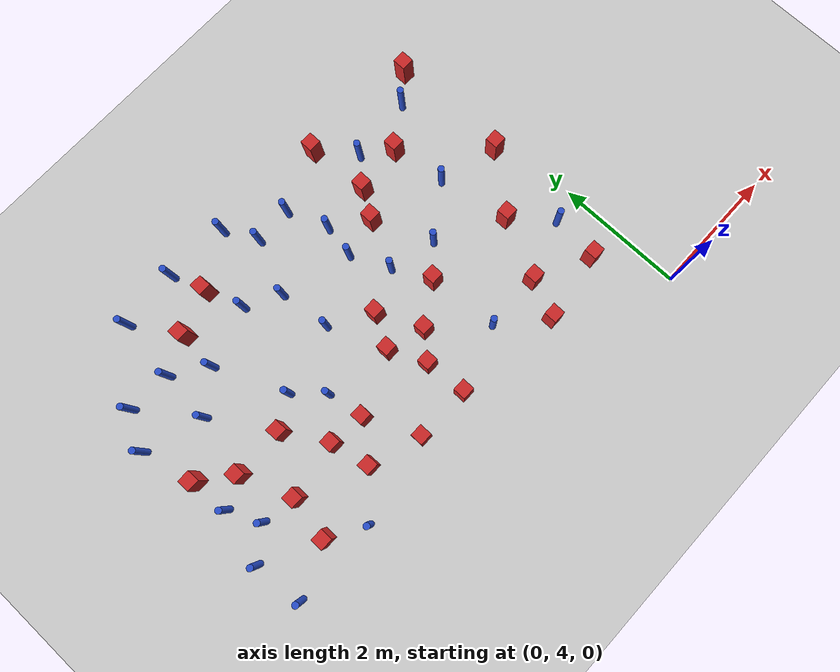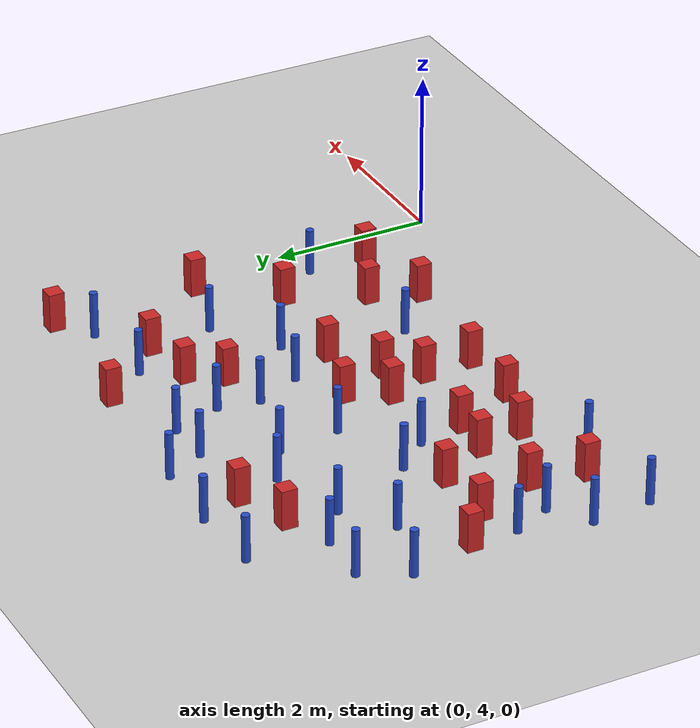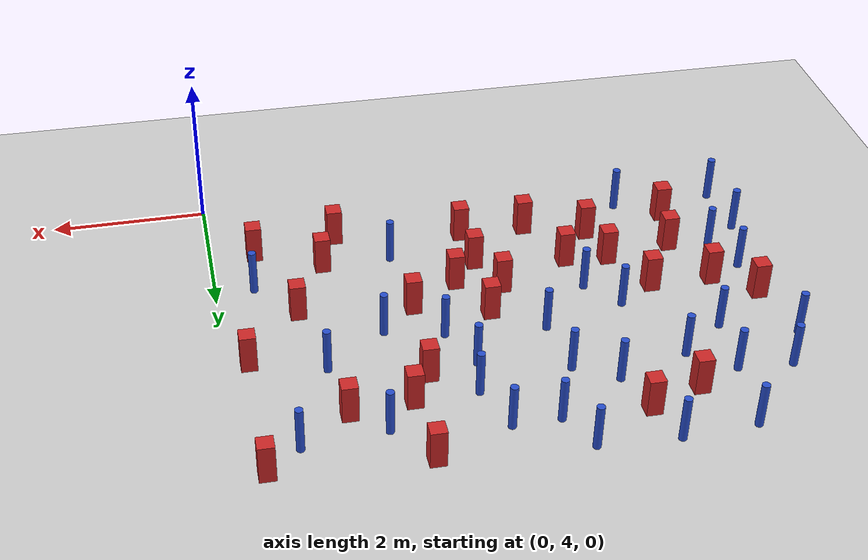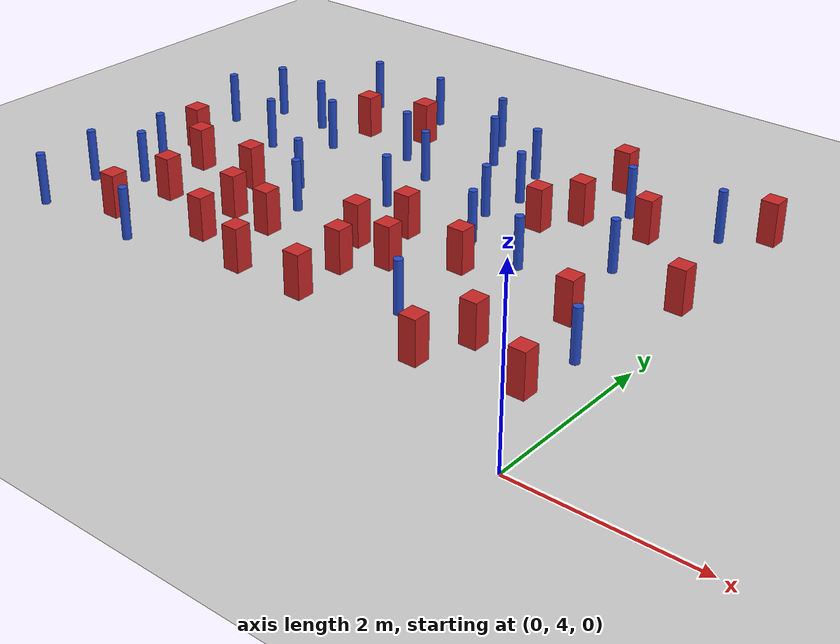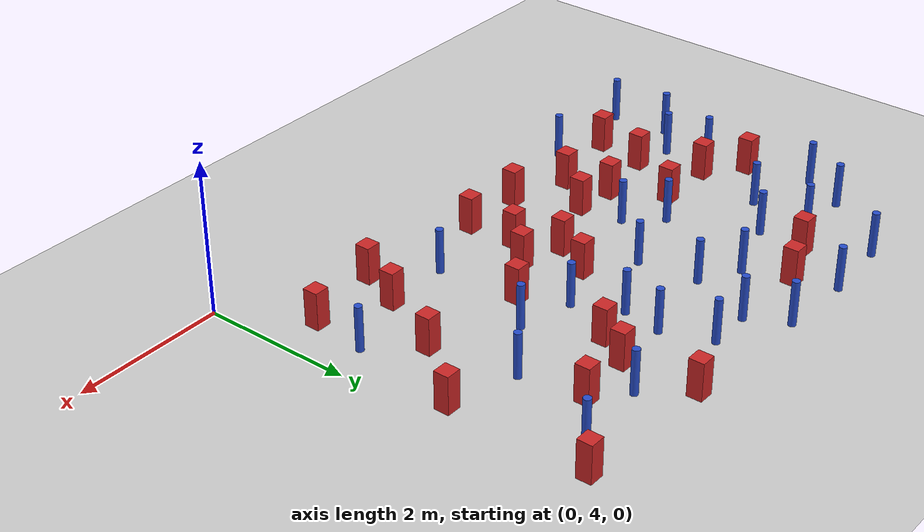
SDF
<sdf version="1.6">
 <world name="default">
  <model name="ground_plane">
   <static>1</static>
   <link name="link">
    <collision name="collision">
     <geometry><plane><normal>0 0 1</normal><size>100 100</size></plane></geometry>
     <surface><friction><ode><mu>100</mu><mu2>50</mu2></ode></friction></surface>
    </collision>
    <visual name="visual">
     <cast_shadows>0</cast_shadows>
     <geometry><plane><normal>0 0 1</normal><size>100 100</size></plane></geometry>
     <material>
      <ambient>1.0 1.0 1.0 1.0</ambient>
      <diffuse>0.8 0.8 0.8 1.0</diffuse>
      <specular>0.01 0.01 0.01 1.000000</specular>
     </material>
    </visual>
   </link>
  </model>
  <model name="square_post_obstacle6">
   <static>true</static>
   <pose>-0.278047388388 9.13855485303 8.22691968438e-08 7.22125133819e-06 -7.54495500217e-07 2.29674213826e-05</pose>
   <link name="link">
    <pose>0 0 0.25 0 -0 0</pose>
    <inertial>
     <mass>100</mass>
     <inertia>
      <ixx>0.166667</ixx>
      <ixy>0</ixy>
      <ixz>0</ixz>
      <iyy>0.166667</iyy>
      <iyz>0</iyz>
      <izz>0.166667</izz>
     </inertia>
    </inertial>
    <collision name="collision"><geometry><box><size>.2 .2 .5</size></box></geometry></collision>
    <visual name="visual">
     <geometry><box><size>.2 .2 .5</size></box></geometry>
     <material>
      <script><name>Gazebo/Red</name><uri>file://media/materials/scripts/gazebo.material</uri></script>
     </material>
    </visual>
   </link>
  </model>
  <model name="square_post_obstacle8">
   <static>true</static>
   <pose>-0.275440074873 7.2741674177 8.22691968438e-08 7.2212513382e-06 -7.54495500217e-07 2.29674213826e-05</pose>
   <link name="link">
    <pose>0 0 0.25 0 -0 0</pose>
    <inertial>
     <mass>100</mass>
     <inertia>
      <ixx>0.166667</ixx>
      <ixy>0</ixy>
      <ixz>0</ixz>
      <iyy>0.166667</iyy>
      <iyz>0</iyz>
      <izz>0.166667</izz>
     </inertia>
    </inertial>
    <collision name="collision"><geometry><box><size>.2 .2 .5</size></box></geometry></collision>
    <visual name="visual">
     <geometry><box><size>.2 .2 .5</size></box></geometry>
     <material>
      <script><name>Gazebo/Red</name><uri>file://media/materials/scripts/gazebo.material</uri></script>
     </material>
    </visual>
   </link>
  </model>
  <model name="square_post_obstacle15">
   <static>true</static>
   <pose>-5.42483959669 8.63668110623 8.22691968438e-08 7.22125133819e-06 -7.54495500217e-07 2.29674213826e-05</pose>
   <link name="link">
    <pose>0 0 0.25 0 -0 0</pose>
    <inertial>
     <mass>100</mass>
     <inertia>
      <ixx>0.166667</ixx>
      <ixy>0</ixy>
      <ixz>0</ixz>
      <iyy>0.166667</iyy>
      <iyz>0</iyz>
      <izz>0.166667</izz>
     </inertia>
    </inertial>
    <collision name="collision"><geometry><box><size>.2 .2 .5</size></box></geometry></collision>
    <visual name="visual">
     <geometry><box><size>.2 .2 .5</size></box></geometry>
     <material>
      <script><name>Gazebo/Red</name><uri>file://media/materials/scripts/gazebo.material</uri></script>
     </material>
    </visual>
   </link>
  </model>
  <model name="pole_obstacle13">
   <static>true</static>
   <pose>-2.69428593522 7.13433227793 2.88873142074e-08 -9.90536689859e-09 4.60219948989e-07 -1.20965994961e-07</pose>
   <link name="link">
    <pose>0 0 0.3 0 -0 0</pose>
    <inertial>
     <mass>1</mass>
     <inertia><ixx>0.145833</ixx><ixy>0</ixy><ixz>0</ixz><iyy>0.145833</iyy><iyz>0</iyz><izz>0.125</izz></inertia>
    </inertial>
    <collision name="collision">
     <geometry><cylinder><radius>0.05</radius><length>.6</length></cylinder></geometry>
    </collision>
    <visual name="visual">
     <geometry><cylinder><radius>0.05</radius><length>.6</length></cylinder></geometry>
     <material>
      <script><name>Gazebo/Blue</name><uri>file://media/materials/scripts/gazebo.material</uri></script>
     </material>
    </visual>
   </link>
  </model>
  <model name="pole_obstacle30">
   <static>true</static>
   <pose>-2.96345489297 7.72469087831 2.88873142074e-08 -9.90536689859e-09 4.60219948989e-07 -1.20965994961e-07</pose>
   <link name="link">
    <pose>0 0 0.3 0 -0 0</pose>
    <inertial>
     <mass>1</mass>
     <inertia><ixx>0.145833</ixx><ixy>0</ixy><ixz>0</ixz><iyy>0.145833</iyy><iyz>0</iyz><izz>0.125</izz></inertia>
    </inertial>
    <collision name="collision">
     <geometry><cylinder><radius>0.05</radius><length>.6</length></cylinder></geometry>
    </collision>
    <visual name="visual">
     <geometry><cylinder><radius>0.05</radius><length>.6</length></cylinder></geometry>
     <material>
      <script><name>Gazebo/Blue</name><uri>file://media/materials/scripts/gazebo.material</uri></script>
     </material>
    </visual>
   </link>
  </model>
  <model name="pole_obstacle35">
   <static>true</static>
   <pose>-5.54558380403 4.84469819112 2.88873142074e-08 -9.90536690842e-09 4.60219948965e-07 -1.20965994976e-07</pose>
   <link name="link">
    <pose>0 0 0.3 0 -0 0</pose>
    <inertial>
     <mass>1</mass>
     <inertia><ixx>0.145833</ixx><ixy>0</ixy><ixz>0</ixz><iyy>0.145833</iyy><iyz>0</iyz><izz>0.125</izz></inertia>
    </inertial>
    <collision name="collision">
     <geometry><cylinder><radius>0.05</radius><length>.6</length></cylinder></geometry>
    </collision>
    <visual name="visual">
     <geometry><cylinder><radius>0.05</radius><length>.6</length></cylinder></geometry>
     <material>
      <script><name>Gazebo/Blue</name><uri>file://media/materials/scripts/gazebo.material</uri></script>
     </material>
    </visual>
   </link>
  </model>
  <model name="square_post_obstacle36">
   <static>true</static>
   <pose>-5.47029633006 6.65134656885 8.22691968438e-08 7.2212513382e-06 -7.54495500217e-07 2.29674213826e-05</pose>
   <link name="link">
    <pose>0 0 0.25 0 -0 0</pose>
    <inertial>
     <mass>100</mass>
     <inertia>
      <ixx>0.166667</ixx>
      <ixy>0</ixy>
      <ixz>0</ixz>
      <iyy>0.166667</iyy>
      <iyz>0</iyz>
      <izz>0.166667</izz>
     </inertia>
    </inertial>
    <collision name="collision"><geometry><box><size>.2 .2 .5</size></box></geometry></collision>
    <visual name="visual">
     <geometry><box><size>.2 .2 .5</size></box></geometry>
     <material>
      <script><name>Gazebo/Red</name><uri>file://media/materials/scripts/gazebo.material</uri></script>
     </material>
    </visual>
   </link>
  </model>
  <model name="square_post_obstacle47">
   <static>true</static>
   <pose>-5.09130973527 5.99680307398 8.22691968438e-08 7.2212513382e-06 -7.54495500217e-07 2.29674213826e-05</pose>
   <link name="link">
    <pose>0 0 0.25 0 -0 0</pose>
    <inertial>
     <mass>100</mass>
     <inertia>
      <ixx>0.166667</ixx>
      <ixy>0</ixy>
      <ixz>0</ixz>
      <iyy>0.166667</iyy>
      <iyz>0</iyz>
      <izz>0.166667</izz>
     </inertia>
    </inertial>
    <collision name="collision"><geometry><box><size>.2 .2 .5</size></box></geometry></collision>
    <visual name="visual">
     <geometry><box><size>.2 .2 .5</size></box></geometry>
     <material>
      <script><name>Gazebo/Red</name><uri>file://media/materials/scripts/gazebo.material</uri></script>
     </material>
    </visual>
   </link>
  </model>
  <model name="square_post_obstacle48">
   <static>true</static>
   <pose>-3.3616059148 5.77959848853 8.22691968438e-08 7.2212513382e-06 -7.54495500217e-07 2.29674213826e-05</pose>
   <link name="link">
    <pose>0 0 0.25 0 -0 0</pose>
    <inertial>
     <mass>100</mass>
     <inertia>
      <ixx>0.166667</ixx>
      <ixy>0</ixy>
      <ixz>0</ixz>
      <iyy>0.166667</iyy>
      <iyz>0</iyz>
      <izz>0.166667</izz>
     </inertia>
    </inertial>
    <collision name="collision"><geometry><box><size>.2 .2 .5</size></box></geometry></collision>
    <visual name="visual">
     <geometry><box><size>.2 .2 .5</size></box></geometry>
     <material>
      <script><name>Gazebo/Red</name><uri>file://media/materials/scripts/gazebo.material</uri></script>
     </material>
    </visual>
   </link>
  </model>
  <model name="pole_obstacle47">
   <static>true</static>
   <pose>-6.67438946008 8.42136175822 2.88873142074e-08 -9.9053668967e-09 4.60219948993e-07 -1.20965994957e-07</pose>
   <link name="link">
    <pose>0 0 0.3 0 -0 0</pose>
    <inertial>
     <mass>1</mass>
     <inertia><ixx>0.145833</ixx><ixy>0</ixy><ixz>0</ixz><iyy>0.145833</iyy><iyz>0</iyz><izz>0.125</izz></inertia>
    </inertial>
    <collision name="collision">
     <geometry><cylinder><radius>0.05</radius><length>.6</length></cylinder></geometry>
    </collision>
    <visual name="visual">
     <geometry><cylinder><radius>0.05</radius><length>.6</length></cylinder></geometry>
     <material>
      <script><name>Gazebo/Blue</name><uri>file://media/materials/scripts/gazebo.material</uri></script>
     </material>
    </visual>
   </link>
  </model>
  <model name="pole_obstacle48">
   <static>true</static>
   <pose>-3.10504759326 8.86883498119 2.88873142074e-08 -9.90536692318e-09 4.6021994893e-07 -1.20965994988e-07</pose>
   <link name="link">
    <pose>0 0 0.3 0 -0 0</pose>
    <inertial>
     <mass>1</mass>
     <inertia><ixx>0.145833</ixx><ixy>0</ixy><ixz>0</ixz><iyy>0.145833</iyy><iyz>0</iyz><izz>0.125</izz></inertia>
    </inertial>
    <collision name="collision">
     <geometry><cylinder><radius>0.05</radius><length>.6</length></cylinder></geometry>
    </collision>
    <visual name="visual">
     <geometry><cylinder><radius>0.05</radius><length>.6</length></cylinder></geometry>
     <material>
      <script><name>Gazebo/Blue</name><uri>file://media/materials/scripts/gazebo.material</uri></script>
     </material>
    </visual>
   </link>
  </model>
  <model name="pole_obstacle56">
   <static>true</static>
   <pose>-1.72775585659 8.69733822991 2.88873142074e-08 -9.90536690474e-09 4.60219948974e-07 -1.2096599497e-07</pose>
   <link name="link">
    <pose>0 0 0.3 0 -0 0</pose>
    <inertial>
     <mass>1</mass>
     <inertia><ixx>0.145833</ixx><ixy>0</ixy><ixz>0</ixz><iyy>0.145833</iyy><iyz>0</iyz><izz>0.125</izz></inertia>
    </inertial>
    <collision name="collision">
     <geometry><cylinder><radius>0.05</radius><length>.6</length></cylinder></geometry>
    </collision>
    <visual name="visual">
     <geometry><cylinder><radius>0.05</radius><length>.6</length></cylinder></geometry>
     <material>
      <script><name>Gazebo/Blue</name><uri>file://media/materials/scripts/gazebo.material</uri></script>
     </material>
    </visual>
   </link>
  </model>
  <model name="square_post_obstacle63">
   <static>true</static>
   <pose>-0.577207001342 5.09539369313 8.22691968438e-08 7.2212513382e-06 -7.54495500217e-07 2.29674213826e-05</pose>
   <link name="link">
    <pose>0 0 0.25 0 -0 0</pose>
    <inertial>
     <mass>100</mass>
     <inertia>
      <ixx>0.166667</ixx>
      <ixy>0</ixy>
      <ixz>0</ixz>
      <iyy>0.166667</iyy>
      <iyz>0</iyz>
      <izz>0.166667</izz>
     </inertia>
    </inertial>
    <collision name="collision"><geometry><box><size>.2 .2 .5</size></box></geometry></collision>
    <visual name="visual">
     <geometry><box><size>.2 .2 .5</size></box></geometry>
     <material>
      <script><name>Gazebo/Red</name><uri>file://media/materials/scripts/gazebo.material</uri></script>
     </material>
    </visual>
   </link>
  </model>
  <model name="square_post_obstacle65">
   <static>true</static>
   <pose>-0.980062814605 6.41514056225 8.22691968438e-08 7.22125133819e-06 -7.54495500217e-07 2.29674213826e-05</pose>
   <link name="link">
    <pose>0 0 0.25 0 -0 0</pose>
    <inertial>
     <mass>100</mass>
     <inertia>
      <ixx>0.166667</ixx>
      <ixy>0</ixy>
      <ixz>0</ixz>
      <iyy>0.166667</iyy>
      <iyz>0</iyz>
      <izz>0.166667</izz>
     </inertia>
    </inertial>
    <collision name="collision"><geometry><box><size>.2 .2 .5</size></box></geometry></collision>
    <visual name="visual">
     <geometry><box><size>.2 .2 .5</size></box></geometry>
     <material>
      <script><name>Gazebo/Red</name><uri>file://media/materials/scripts/gazebo.material</uri></script>
     </material>
    </visual>
   </link>
  </model>
  <model name="pole_obstacle71">
   <static>true</static>
   <pose>-4.94316768794 9.40989537519 2.88873142074e-08 -9.9053668967e-09 4.60219948993e-07 -1.20965994957e-07</pose>
   <link name="link">
    <pose>0 0 0.3 0 -0 0</pose>
    <inertial>
     <mass>1</mass>
     <inertia><ixx>0.145833</ixx><ixy>0</ixy><ixz>0</ixz><iyy>0.145833</iyy><iyz>0</iyz><izz>0.125</izz></inertia>
    </inertial>
    <collision name="collision">
     <geometry><cylinder><radius>0.05</radius><length>.6</length></cylinder></geometry>
    </collision>
    <visual name="visual">
     <geometry><cylinder><radius>0.05</radius><length>.6</length></cylinder></geometry>
     <material>
      <script><name>Gazebo/Blue</name><uri>file://media/materials/scripts/gazebo.material</uri></script>
     </material>
    </visual>
   </link>
  </model>
  <model name="pole_obstacle72">
   <static>true</static>
   <pose>-4.56400019321 8.31030411455 2.88873142074e-08 -9.9053668967e-09 4.60219948993e-07 -1.20965994957e-07</pose>
   <link name="link">
    <pose>0 0 0.3 0 -0 0</pose>
    <inertial>
     <mass>1</mass>
     <inertia><ixx>0.145833</ixx><ixy>0</ixy><ixz>0</ixz><iyy>0.145833</iyy><iyz>0</iyz><izz>0.125</izz></inertia>
    </inertial>
    <collision name="collision">
     <geometry><cylinder><radius>0.05</radius><length>.6</length></cylinder></geometry>
    </collision>
    <visual name="visual">
     <geometry><cylinder><radius>0.05</radius><length>.6</length></cylinder></geometry>
     <material>
      <script><name>Gazebo/Blue</name><uri>file://media/materials/scripts/gazebo.material</uri></script>
     </material>
    </visual>
   </link>
  </model>
  <model name="pole_obstacle75">
   <static>true</static>
   <pose>-6.05443404219 7.57568638594 2.88873142074e-08 -9.90536690842e-09 4.60219948965e-07 -1.20965994976e-07</pose>
   <link name="link">
    <pose>0 0 0.3 0 -0 0</pose>
    <inertial>
     <mass>1</mass>
     <inertia><ixx>0.145833</ixx><ixy>0</ixy><ixz>0</ixz><iyy>0.145833</iyy><iyz>0</iyz><izz>0.125</izz></inertia>
    </inertial>
    <collision name="collision">
     <geometry><cylinder><radius>0.05</radius><length>.6</length></cylinder></geometry>
    </collision>
    <visual name="visual">
     <geometry><cylinder><radius>0.05</radius><length>.6</length></cylinder></geometry>
     <material>
      <script><name>Gazebo/Blue</name><uri>file://media/materials/scripts/gazebo.material</uri></script>
     </material>
    </visual>
   </link>
  </model>
  <model name="square_post_obstacle77">
   <static>true</static>
   <pose>-6.09196059128 5.17222978637 8.22691968438e-08 7.22125133819e-06 -7.54495500217e-07 2.29674213826e-05</pose>
   <link name="link">
    <pose>0 0 0.25 0 -0 0</pose>
    <inertial>
     <mass>100</mass>
     <inertia>
      <ixx>0.166667</ixx>
      <ixy>0</ixy>
      <ixz>0</ixz>
      <iyy>0.166667</iyy>
      <iyz>0</iyz>
      <izz>0.166667</izz>
     </inertia>
    </inertial>
    <collision name="collision"><geometry><box><size>.2 .2 .5</size></box></geometry></collision>
    <visual name="visual">
     <geometry><box><size>.2 .2 .5</size></box></geometry>
     <material>
      <script><name>Gazebo/Red</name><uri>file://media/materials/scripts/gazebo.material</uri></script>
     </material>
    </visual>
   </link>
  </model>
  <model name="square_post_obstacle79">
   <static>true</static>
   <pose>-3.03154806516 6.15822013035 8.22691968438e-08 7.2212513382e-06 -7.54495500217e-07 2.29674213826e-05</pose>
   <link name="link">
    <pose>0 0 0.25 0 -0 0</pose>
    <inertial>
     <mass>100</mass>
     <inertia>
      <ixx>0.166667</ixx>
      <ixy>0</ixy>
      <ixz>0</ixz>
      <iyy>0.166667</iyy>
      <iyz>0</iyz>
      <izz>0.166667</izz>
     </inertia>
    </inertial>
    <collision name="collision"><geometry><box><size>.2 .2 .5</size></box></geometry></collision>
    <visual name="visual">
     <geometry><box><size>.2 .2 .5</size></box></geometry>
     <material>
      <script><name>Gazebo/Red</name><uri>file://media/materials/scripts/gazebo.material</uri></script>
     </material>
    </visual>
   </link>
  </model>
  <model name="pole_obstacle93">
   <static>true</static>
   <pose>-2.31403914855 5.47337985397 2.88873142074e-08 -9.90536689859e-09 4.60219948989e-07 -1.20965994961e-07</pose>
   <link name="link">
    <pose>0 0 0.3 0 -0 0</pose>
    <inertial>
     <mass>1</mass>
     <inertia><ixx>0.145833</ixx><ixy>0</ixy><ixz>0</ixz><iyy>0.145833</iyy><iyz>0</iyz><izz>0.125</izz></inertia>
    </inertial>
    <collision name="collision">
     <geometry><cylinder><radius>0.05</radius><length>.6</length></cylinder></geometry>
    </collision>
    <visual name="visual">
     <geometry><cylinder><radius>0.05</radius><length>.6</length></cylinder></geometry>
     <material>
      <script><name>Gazebo/Blue</name><uri>file://media/materials/scripts/gazebo.material</uri></script>
     </material>
    </visual>
   </link>
  </model>
  <model name="square_post_obstacle84">
   <static>true</static>
   <pose>-6.7601133632 7.03858332938 8.22691968438e-08 7.2212513382e-06 -7.54495500217e-07 2.29674213826e-05</pose>
   <link name="link">
    <pose>0 0 0.25 0 -0 0</pose>
    <inertial>
     <mass>100</mass>
     <inertia>
      <ixx>0.166667</ixx>
      <ixy>0</ixy>
      <ixz>0</ixz>
      <iyy>0.166667</iyy>
      <iyz>0</iyz>
      <izz>0.166667</izz>
     </inertia>
    </inertial>
    <collision name="collision"><geometry><box><size>.2 .2 .5</size></box></geometry></collision>
    <visual name="visual">
     <geometry><box><size>.2 .2 .5</size></box></geometry>
     <material>
      <script><name>Gazebo/Red</name><uri>file://media/materials/scripts/gazebo.material</uri></script>
     </material>
    </visual>
   </link>
  </model>
  <model name="square_post_obstacle91">
   <static>true</static>
   <pose>-4.96617258377 5.39990755819 8.22691968438e-08 7.2212513382e-06 -7.54495500217e-07 2.29674213826e-05</pose>
   <link name="link">
    <pose>0 0 0.25 0 -0 0</pose>
    <inertial>
     <mass>100</mass>
     <inertia>
      <ixx>0.166667</ixx>
      <ixy>0</ixy>
      <ixz>0</ixz>
      <iyy>0.166667</iyy>
      <iyz>0</iyz>
      <izz>0.166667</izz>
     </inertia>
    </inertial>
    <collision name="collision"><geometry><box><size>.2 .2 .5</size></box></geometry></collision>
    <visual name="visual">
     <geometry><box><size>.2 .2 .5</size></box></geometry>
     <material>
      <script><name>Gazebo/Red</name><uri>file://media/materials/scripts/gazebo.material</uri></script>
     </material>
    </visual>
   </link>
  </model>
  <model name="square_post_obstacle98">
   <static>true</static>
   <pose>-3.60601128203 6.33674085012 8.22691968438e-08 7.2212513382e-06 -7.54495500217e-07 2.29674213826e-05</pose>
   <link name="link">
    <pose>0 0 0.25 0 -0 0</pose>
    <inertial>
     <mass>100</mass>
     <inertia>
      <ixx>0.166667</ixx>
      <ixy>0</ixy>
      <ixz>0</ixz>
      <iyy>0.166667</iyy>
      <iyz>0</iyz>
      <izz>0.166667</izz>
     </inertia>
    </inertial>
    <collision name="collision"><geometry><box><size>.2 .2 .5</size></box></geometry></collision>
    <visual name="visual">
     <geometry><box><size>.2 .2 .5</size></box></geometry>
     <material>
      <script><name>Gazebo/Red</name><uri>file://media/materials/scripts/gazebo.material</uri></script>
     </material>
    </visual>
   </link>
  </model>
  <model name="pole_obstacle110">
   <static>true</static>
   <pose>-4.04774074486 8.01870754335 2.88873142074e-08 -9.90536690172e-09 4.60219948981e-07 -1.20965994965e-07</pose>
   <link name="link">
    <pose>0 0 0.3 0 -0 0</pose>
    <inertial>
     <mass>1</mass>
     <inertia><ixx>0.145833</ixx><ixy>0</ixy><ixz>0</ixz><iyy>0.145833</iyy><iyz>0</iyz><izz>0.125</izz></inertia>
    </inertial>
    <collision name="collision">
     <geometry><cylinder><radius>0.05</radius><length>.6</length></cylinder></geometry>
    </collision>
    <visual name="visual">
     <geometry><cylinder><radius>0.05</radius><length>.6</length></cylinder></geometry>
     <material>
      <script><name>Gazebo/Blue</name><uri>file://media/materials/scripts/gazebo.material</uri></script>
     </material>
    </visual>
   </link>
  </model>
  <model name="square_post_obstacle102">
   <static>true</static>
   <pose>-2.40691678039 6.56311837822 8.22691968438e-08 7.2212513382e-06 -7.54495500217e-07 2.29674213826e-05</pose>
   <link name="link">
    <pose>0 0 0.25 0 -0 0</pose>
    <inertial>
     <mass>100</mass>
     <inertia>
      <ixx>0.166667</ixx>
      <ixy>0</ixy>
      <ixz>0</ixz>
      <iyy>0.166667</iyy>
      <iyz>0</iyz>
      <izz>0.166667</izz>
     </inertia>
    </inertial>
    <collision name="collision"><geometry><box><size>.2 .2 .5</size></box></geometry></collision>
    <visual name="visual">
     <geometry><box><size>.2 .2 .5</size></box></geometry>
     <material>
      <script><name>Gazebo/Red</name><uri>file://media/materials/scripts/gazebo.material</uri></script>
     </material>
    </visual>
   </link>
  </model>
  <model name="pole_obstacle116">
   <static>true</static>
   <pose>-6.96563998694 5.60405355709 2.88873142074e-08 -9.90536690842e-09 4.60219948965e-07 -1.20965994976e-07</pose>
   <link name="link">
    <pose>0 0 0.3 0 -0 0</pose>
    <inertial>
     <mass>1</mass>
     <inertia><ixx>0.145833</ixx><ixy>0</ixy><ixz>0</ixz><iyy>0.145833</iyy><iyz>0</iyz><izz>0.125</izz></inertia>
    </inertial>
    <collision name="collision">
     <geometry><cylinder><radius>0.05</radius><length>.6</length></cylinder></geometry>
    </collision>
    <visual name="visual">
     <geometry><cylinder><radius>0.05</radius><length>.6</length></cylinder></geometry>
     <material>
      <script><name>Gazebo/Blue</name><uri>file://media/materials/scripts/gazebo.material</uri></script>
     </material>
    </visual>
   </link>
  </model>
  <model name="pole_obstacle126">
   <static>true</static>
   <pose>-6.9697141789 7.86430248231 2.88873142074e-08 -9.90536690842e-09 4.60219948965e-07 -1.20965994976e-07</pose>
   <link name="link">
    <pose>0 0 0.3 0 -0 0</pose>
    <inertial>
     <mass>1</mass>
     <inertia><ixx>0.145833</ixx><ixy>0</ixy><ixz>0</ixz><iyy>0.145833</iyy><iyz>0</iyz><izz>0.125</izz></inertia>
    </inertial>
    <collision name="collision">
     <geometry><cylinder><radius>0.05</radius><length>.6</length></cylinder></geometry>
    </collision>
    <visual name="visual">
     <geometry><cylinder><radius>0.05</radius><length>.6</length></cylinder></geometry>
     <material>
      <script><name>Gazebo/Blue</name><uri>file://media/materials/scripts/gazebo.material</uri></script>
     </material>
    </visual>
   </link>
  </model>
  <model name="square_post_obstacle124">
   <static>true</static>
   <pose>-1.41863509675 5.49697087451 8.22691968438e-08 7.2212513382e-06 -7.54495500217e-07 2.29674213826e-05</pose>
   <link name="link">
    <pose>0 0 0.25 0 -0 0</pose>
    <inertial>
     <mass>100</mass>
     <inertia>
      <ixx>0.166667</ixx>
      <ixy>0</ixy>
      <ixz>0</ixz>
      <iyy>0.166667</iyy>
      <iyz>0</iyz>
      <izz>0.166667</izz>
     </inertia>
    </inertial>
    <collision name="collision"><geometry><box><size>.2 .2 .5</size></box></geometry></collision>
    <visual name="visual">
     <geometry><box><size>.2 .2 .5</size></box></geometry>
     <material>
      <script><name>Gazebo/Red</name><uri>file://media/materials/scripts/gazebo.material</uri></script>
     </material>
    </visual>
   </link>
  </model>
  <model name="pole_obstacle140">
   <static>true</static>
   <pose>-6.50195101073 5.94503177024 2.88873142074e-08 -9.90536690842e-09 4.60219948965e-07 -1.20965994976e-07</pose>
   <link name="link">
    <pose>0 0 0.3 0 -0 0</pose>
    <inertial>
     <mass>1</mass>
     <inertia><ixx>0.145833</ixx><ixy>0</ixy><ixz>0</ixz><iyy>0.145833</iyy><iyz>0</iyz><izz>0.125</izz></inertia>
    </inertial>
    <collision name="collision">
     <geometry><cylinder><radius>0.05</radius><length>.6</length></cylinder></geometry>
    </collision>
    <visual name="visual">
     <geometry><cylinder><radius>0.05</radius><length>.6</length></cylinder></geometry>
     <material>
      <script><name>Gazebo/Blue</name><uri>file://media/materials/scripts/gazebo.material</uri></script>
     </material>
    </visual>
   </link>
  </model>
  <model name="pole_obstacle142">
   <static>true</static>
   <pose>-1.96877184745 6.958703363 2.88873142074e-08 -9.90536689721e-09 4.60219948992e-07 -1.20965994958e-07</pose>
   <link name="link">
    <pose>0 0 0.3 0 -0 0</pose>
    <inertial>
     <mass>1</mass>
     <inertia><ixx>0.145833</ixx><ixy>0</ixy><ixz>0</ixz><iyy>0.145833</iyy><iyz>0</iyz><izz>0.125</izz></inertia>
    </inertial>
    <collision name="collision">
     <geometry><cylinder><radius>0.05</radius><length>.6</length></cylinder></geometry>
    </collision>
    <visual name="visual">
     <geometry><cylinder><radius>0.05</radius><length>.6</length></cylinder></geometry>
     <material>
      <script><name>Gazebo/Blue</name><uri>file://media/materials/scripts/gazebo.material</uri></script>
     </material>
    </visual>
   </link>
  </model>
  <model name="square_post_obstacle133">
   <static>true</static>
   <pose>-5.96771514176 5.84758943629 8.22691968438e-08 7.2212513382e-06 -7.54495500217e-07 2.29674213826e-05</pose>
   <link name="link">
    <pose>0 0 0.25 0 -0 0</pose>
    <inertial>
     <mass>100</mass>
     <inertia>
      <ixx>0.166667</ixx>
      <ixy>0</ixy>
      <ixz>0</ixz>
      <iyy>0.166667</iyy>
      <iyz>0</iyz>
      <izz>0.166667</izz>
     </inertia>
    </inertial>
    <collision name="collision"><geometry><box><size>.2 .2 .5</size></box></geometry></collision>
    <visual name="visual">
     <geometry><box><size>.2 .2 .5</size></box></geometry>
     <material>
      <script><name>Gazebo/Red</name><uri>file://media/materials/scripts/gazebo.material</uri></script>
     </material>
    </visual>
   </link>
  </model>
  <model name="square_post_obstacle135">
   <static>true</static>
   <pose>-1.65903214879 4.90993914299 8.22691968438e-08 7.2212513382e-06 -7.54495500217e-07 2.29674213826e-05</pose>
   <link name="link">
    <pose>0 0 0.25 0 -0 0</pose>
    <inertial>
     <mass>100</mass>
     <inertia>
      <ixx>0.166667</ixx>
      <ixy>0</ixy>
      <ixz>0</ixz>
      <iyy>0.166667</iyy>
      <iyz>0</iyz>
      <izz>0.166667</izz>
     </inertia>
    </inertial>
    <collision name="collision"><geometry><box><size>.2 .2 .5</size></box></geometry></collision>
    <visual name="visual">
     <geometry><box><size>.2 .2 .5</size></box></geometry>
     <material>
      <script><name>Gazebo/Red</name><uri>file://media/materials/scripts/gazebo.material</uri></script>
     </material>
    </visual>
   </link>
  </model>
  <model name="pole_obstacle145">
   <static>true</static>
   <pose>-0.497229906374 5.82012986283 2.88873142074e-08 -9.90536689758e-09 4.60219948991e-07 -1.20965994957e-07</pose>
   <link name="link">
    <pose>0 0 0.3 0 -0 0</pose>
    <inertial>
     <mass>1</mass>
     <inertia><ixx>0.145833</ixx><ixy>0</ixy><ixz>0</ixz><iyy>0.145833</iyy><iyz>0</iyz><izz>0.125</izz></inertia>
    </inertial>
    <collision name="collision">
     <geometry><cylinder><radius>0.05</radius><length>.6</length></cylinder></geometry>
    </collision>
    <visual name="visual">
     <geometry><cylinder><radius>0.05</radius><length>.6</length></cylinder></geometry>
     <material>
      <script><name>Gazebo/Blue</name><uri>file://media/materials/scripts/gazebo.material</uri></script>
     </material>
    </visual>
   </link>
  </model>
  <model name="square_post_obstacle136">
   <static>true</static>
   <pose>-1.31520337008 8.35799267714 8.22691968438e-08 7.22125133819e-06 -7.54495500217e-07 2.29674213826e-05</pose>
   <link name="link">
    <pose>0 0 0.25 0 -0 0</pose>
    <inertial>
     <mass>100</mass>
     <inertia>
      <ixx>0.166667</ixx>
      <ixy>0</ixy>
      <ixz>0</ixz>
      <iyy>0.166667</iyy>
      <iyz>0</iyz>
      <izz>0.166667</izz>
     </inertia>
    </inertial>
    <collision name="collision"><geometry><box><size>.2 .2 .5</size></box></geometry></collision>
    <visual name="visual">
     <geometry><box><size>.2 .2 .5</size></box></geometry>
     <material>
      <script><name>Gazebo/Red</name><uri>file://media/materials/scripts/gazebo.material</uri></script>
     </material>
    </visual>
   </link>
  </model>
  <model name="pole_obstacle152">
   <static>true</static>
   <pose>-0.692171163268 8.80141340066 2.88873142074e-08 -9.90536690779e-09 4.60219948967e-07 -1.20965994975e-07</pose>
   <link name="link">
    <pose>0 0 0.3 0 -0 0</pose>
    <inertial>
     <mass>1</mass>
     <inertia><ixx>0.145833</ixx><ixy>0</ixy><ixz>0</ixz><iyy>0.145833</iyy><iyz>0</iyz><izz>0.125</izz></inertia>
    </inertial>
    <collision name="collision">
     <geometry><cylinder><radius>0.05</radius><length>.6</length></cylinder></geometry>
    </collision>
    <visual name="visual">
     <geometry><cylinder><radius>0.05</radius><length>.6</length></cylinder></geometry>
     <material>
      <script><name>Gazebo/Blue</name><uri>file://media/materials/scripts/gazebo.material</uri></script>
     </material>
    </visual>
   </link>
  </model>
  <model name="square_post_obstacle147">
   <static>true</static>
   <pose>-4.17597755104 5.13874546375 8.22691968438e-08 7.22125133819e-06 -7.54495500217e-07 2.29674213826e-05</pose>
   <link name="link">
    <pose>0 0 0.25 0 -0 0</pose>
    <inertial>
     <mass>100</mass>
     <inertia>
      <ixx>0.166667</ixx>
      <ixy>0</ixy>
      <ixz>0</ixz>
      <iyy>0.166667</iyy>
      <iyz>0</iyz>
      <izz>0.166667</izz>
     </inertia>
    </inertial>
    <collision name="collision"><geometry><box><size>.2 .2 .5</size></box></geometry></collision>
    <visual name="visual">
     <geometry><box><size>.2 .2 .5</size></box></geometry>
     <material>
      <script><name>Gazebo/Red</name><uri>file://media/materials/scripts/gazebo.material</uri></script>
     </material>
    </visual>
   </link>
  </model>
  <model name="pole_obstacle159">
   <static>true</static>
   <pose>-5.47319302222 8.01664935447 2.88873142074e-08 -9.90536690354e-09 4.60219948977e-07 -1.20965994967e-07</pose>
   <link name="link">
    <pose>0 0 0.3 0 -0 0</pose>
    <inertial>
     <mass>1</mass>
     <inertia><ixx>0.145833</ixx><ixy>0</ixy><ixz>0</ixz><iyy>0.145833</iyy><iyz>0</iyz><izz>0.125</izz></inertia>
    </inertial>
    <collision name="collision">
     <geometry><cylinder><radius>0.05</radius><length>.6</length></cylinder></geometry>
    </collision>
    <visual name="visual">
     <geometry><cylinder><radius>0.05</radius><length>.6</length></cylinder></geometry>
     <material>
      <script><name>Gazebo/Blue</name><uri>file://media/materials/scripts/gazebo.material</uri></script>
     </material>
    </visual>
   </link>
  </model>
  <model name="pole_obstacle160">
   <static>true</static>
   <pose>-1.18993479982 7.51947496324 2.88873142074e-08 -9.90536689852e-09 4.60219948989e-07 -1.2096599496e-07</pose>
   <link name="link">
    <pose>0 0 0.3 0 -0 0</pose>
    <inertial>
     <mass>1</mass>
     <inertia><ixx>0.145833</ixx><ixy>0</ixy><ixz>0</ixz><iyy>0.145833</iyy><iyz>0</iyz><izz>0.125</izz></inertia>
    </inertial>
    <collision name="collision">
     <geometry><cylinder><radius>0.05</radius><length>.6</length></cylinder></geometry>
    </collision>
    <visual name="visual">
     <geometry><cylinder><radius>0.05</radius><length>.6</length></cylinder></geometry>
     <material>
      <script><name>Gazebo/Blue</name><uri>file://media/materials/scripts/gazebo.material</uri></script>
     </material>
    </visual>
   </link>
  </model>
  <model name="square_post_obstacle158">
   <static>true</static>
   <pose>-3.33529638052 6.83062075226 8.22691968438e-08 7.2212513382e-06 -7.54495500217e-07 2.29674213826e-05</pose>
   <link name="link">
    <pose>0 0 0.25 0 -0 0</pose>
    <inertial>
     <mass>100</mass>
     <inertia>
      <ixx>0.166667</ixx>
      <ixy>0</ixy>
      <ixz>0</ixz>
      <iyy>0.166667</iyy>
      <iyz>0</iyz>
      <izz>0.166667</izz>
     </inertia>
    </inertial>
    <collision name="collision"><geometry><box><size>.2 .2 .5</size></box></geometry></collision>
    <visual name="visual">
     <geometry><box><size>.2 .2 .5</size></box></geometry>
     <material>
      <script><name>Gazebo/Red</name><uri>file://media/materials/scripts/gazebo.material</uri></script>
     </material>
    </visual>
   </link>
  </model>
  <model name="square_post_obstacle160">
   <static>true</static>
   <pose>-3.31722376758 5.13027248877 8.22691968438e-08 7.2212513382e-06 -7.54495500217e-07 2.29674213826e-05</pose>
   <link name="link">
    <pose>0 0 0.25 0 -0 0</pose>
    <inertial>
     <mass>100</mass>
     <inertia>
      <ixx>0.166667</ixx>
      <ixy>0</ixy>
      <ixz>0</ixz>
      <iyy>0.166667</iyy>
      <iyz>0</iyz>
      <izz>0.166667</izz>
     </inertia>
    </inertial>
    <collision name="collision"><geometry><box><size>.2 .2 .5</size></box></geometry></collision>
    <visual name="visual">
     <geometry><box><size>.2 .2 .5</size></box></geometry>
     <material>
      <script><name>Gazebo/Red</name><uri>file://media/materials/scripts/gazebo.material</uri></script>
     </material>
    </visual>
   </link>
  </model>
  <model name="pole_obstacle169">
   <static>true</static>
   <pose>-3.95204750099 7.22836246086 2.88873142074e-08 -9.90536690054e-09 4.60219948984e-07 -1.20965994964e-07</pose>
   <link name="link">
    <pose>0 0 0.3 0 -0 0</pose>
    <inertial>
     <mass>1</mass>
     <inertia><ixx>0.145833</ixx><ixy>0</ixy><ixz>0</ixz><iyy>0.145833</iyy><iyz>0</iyz><izz>0.125</izz></inertia>
    </inertial>
    <collision name="collision">
     <geometry><cylinder><radius>0.05</radius><length>.6</length></cylinder></geometry>
    </collision>
    <visual name="visual">
     <geometry><cylinder><radius>0.05</radius><length>.6</length></cylinder></geometry>
     <material>
      <script><name>Gazebo/Blue</name><uri>file://media/materials/scripts/gazebo.material</uri></script>
     </material>
    </visual>
   </link>
  </model>
  <model name="square_post_obstacle172">
   <static>true</static>
   <pose>-4.75753501517 8.88654655516 8.22691968438e-08 7.22125133819e-06 -7.54495500217e-07 2.29674213826e-05</pose>
   <link name="link">
    <pose>0 0 0.25 0 -0 0</pose>
    <inertial>
     <mass>100</mass>
     <inertia>
      <ixx>0.166667</ixx>
      <ixy>0</ixy>
      <ixz>0</ixz>
      <iyy>0.166667</iyy>
      <iyz>0</iyz>
      <izz>0.166667</izz>
     </inertia>
    </inertial>
    <collision name="collision"><geometry><box><size>.2 .2 .5</size></box></geometry></collision>
    <visual name="visual">
     <geometry><box><size>.2 .2 .5</size></box></geometry>
     <material>
      <script><name>Gazebo/Red</name><uri>file://media/materials/scripts/gazebo.material</uri></script>
     </material>
    </visual>
   </link>
  </model>
  <model name="pole_obstacle186">
   <static>true</static>
   <pose>-2.87294439288 8.24033920715 2.88873142074e-08 -9.90536692318e-09 4.6021994893e-07 -1.20965994988e-07</pose>
   <link name="link">
    <pose>0 0 0.3 0 -0 0</pose>
    <inertial>
     <mass>1</mass>
     <inertia><ixx>0.145833</ixx><ixy>0</ixy><ixz>0</ixz><iyy>0.145833</iyy><iyz>0</iyz><izz>0.125</izz></inertia>
    </inertial>
    <collision name="collision">
     <geometry><cylinder><radius>0.05</radius><length>.6</length></cylinder></geometry>
    </collision>
    <visual name="visual">
     <geometry><cylinder><radius>0.05</radius><length>.6</length></cylinder></geometry>
     <material>
      <script><name>Gazebo/Blue</name><uri>file://media/materials/scripts/gazebo.material</uri></script>
     </material>
    </visual>
   </link>
  </model>
  <model name="square_post_obstacle185">
   <static>true</static>
   <pose>-2.0866942367 8.27786213992 8.22691968438e-08 7.22125133819e-06 -7.54495500217e-07 2.29674213826e-05</pose>
   <link name="link">
    <pose>0 0 0.25 0 -0 0</pose>
    <inertial>
     <mass>100</mass>
     <inertia>
      <ixx>0.166667</ixx>
      <ixy>0</ixy>
      <ixz>0</ixz>
      <iyy>0.166667</iyy>
      <iyz>0</iyz>
      <izz>0.166667</izz>
     </inertia>
    </inertial>
    <collision name="collision"><geometry><box><size>.2 .2 .5</size></box></geometry></collision>
    <visual name="visual">
     <geometry><box><size>.2 .2 .5</size></box></geometry>
     <material>
      <script><name>Gazebo/Red</name><uri>file://media/materials/scripts/gazebo.material</uri></script>
     </material>
    </visual>
   </link>
  </model>
  <model name="pole_obstacle194">
   <static>true</static>
   <pose>-3.95619703657 9.35830452467 2.88873142074e-08 -9.90536690427e-09 4.60219948975e-07 -1.2096599497e-07</pose>
   <link name="link">
    <pose>0 0 0.3 0 -0 0</pose>
    <inertial>
     <mass>1</mass>
     <inertia><ixx>0.145833</ixx><ixy>0</ixy><ixz>0</ixz><iyy>0.145833</iyy><iyz>0</iyz><izz>0.125</izz></inertia>
    </inertial>
    <collision name="collision">
     <geometry><cylinder><radius>0.05</radius><length>.6</length></cylinder></geometry>
    </collision>
    <visual name="visual">
     <geometry><cylinder><radius>0.05</radius><length>.6</length></cylinder></geometry>
     <material>
      <script><name>Gazebo/Blue</name><uri>file://media/materials/scripts/gazebo.material</uri></script>
     </material>
    </visual>
   </link>
  </model>
  <model name="pole_obstacle199">
   <static>true</static>
   <pose>-6.89447526843 4.83665307926 2.88873142074e-08 -9.90536690842e-09 4.60219948965e-07 -1.20965994976e-07</pose>
   <link name="link">
    <pose>0 0 0.3 0 -0 0</pose>
    <inertial>
     <mass>1</mass>
     <inertia><ixx>0.145833</ixx><ixy>0</ixy><ixz>0</ixz><iyy>0.145833</iyy><iyz>0</iyz><izz>0.125</izz></inertia>
    </inertial>
    <collision name="collision">
     <geometry><cylinder><radius>0.05</radius><length>.6</length></cylinder></geometry>
    </collision>
    <visual name="visual">
     <geometry><cylinder><radius>0.05</radius><length>.6</length></cylinder></geometry>
     <material>
      <script><name>Gazebo/Blue</name><uri>file://media/materials/scripts/gazebo.material</uri></script>
     </material>
    </visual>
   </link>
  </model>
  <model name="square_post_obstacle191">
   <static>true</static>
   <pose>-2.15048817069 9.25310784615 8.22691968438e-08 7.22125133819e-06 -7.54495500217e-07 2.29674213826e-05</pose>
   <link name="link">
    <pose>0 0 0.25 0 -0 0</pose>
    <inertial>
     <mass>100</mass>
     <inertia>
      <ixx>0.166667</ixx>
      <ixy>0</ixy>
      <ixz>0</ixz>
      <iyy>0.166667</iyy>
      <iyz>0</iyz>
      <izz>0.166667</izz>
     </inertia>
    </inertial>
    <collision name="collision"><geometry><box><size>.2 .2 .5</size></box></geometry></collision>
    <visual name="visual">
     <geometry><box><size>.2 .2 .5</size></box></geometry>
     <material>
      <script><name>Gazebo/Red</name><uri>file://media/materials/scripts/gazebo.material</uri></script>
     </material>
    </visual>
   </link>
  </model>
  <model name="square_post_obstacle194">
   <static>true</static>
   <pose>-6.27337679724 6.64807611579 8.22691968438e-08 7.22125133819e-06 -7.54495500217e-07 2.29674213826e-05</pose>
   <link name="link">
    <pose>0 0 0.25 0 -0 0</pose>
    <inertial>
     <mass>100</mass>
     <inertia>
      <ixx>0.166667</ixx>
      <ixy>0</ixy>
      <ixz>0</ixz>
      <iyy>0.166667</iyy>
      <iyz>0</iyz>
      <izz>0.166667</izz>
     </inertia>
    </inertial>
    <collision name="collision"><geometry><box><size>.2 .2 .5</size></box></geometry></collision>
    <visual name="visual">
     <geometry><box><size>.2 .2 .5</size></box></geometry>
     <material>
      <script><name>Gazebo/Red</name><uri>file://media/materials/scripts/gazebo.material</uri></script>
     </material>
    </visual>
   </link>
  </model>
  <model name="square_post_obstacle195">
   <static>true</static>
   <pose>-4.53652928087 5.93891633637 8.22691968438e-08 7.2212513382e-06 -7.54495500217e-07 2.29674213826e-05</pose>
   <link name="link">
    <pose>0 0 0.25 0 -0 0</pose>
    <inertial>
     <mass>100</mass>
     <inertia>
      <ixx>0.166667</ixx>
      <ixy>0</ixy>
      <ixz>0</ixz>
      <iyy>0.166667</iyy>
      <iyz>0</iyz>
      <izz>0.166667</izz>
     </inertia>
    </inertial>
    <collision name="collision"><geometry><box><size>.2 .2 .5</size></box></geometry></collision>
    <visual name="visual">
     <geometry><box><size>.2 .2 .5</size></box></geometry>
     <material>
      <script><name>Gazebo/Red</name><uri>file://media/materials/scripts/gazebo.material</uri></script>
     </material>
    </visual>
   </link>
  </model>
  <model name="square_post_obstacle196">
   <static>true</static>
   <pose>-2.35101722859 7.85160517307 8.22691968438e-08 7.2212513382e-06 -7.54495500217e-07 2.29674213826e-05</pose>
   <link name="link">
    <pose>0 0 0.25 0 -0 0</pose>
    <inertial>
     <mass>100</mass>
     <inertia>
      <ixx>0.166667</ixx>
      <ixy>0</ixy>
      <ixz>0</ixz>
      <iyy>0.166667</iyy>
      <iyz>0</iyz>
      <izz>0.166667</izz>
     </inertia>
    </inertial>
    <collision name="collision"><geometry><box><size>.2 .2 .5</size></box></geometry></collision>
    <visual name="visual">
     <geometry><box><size>.2 .2 .5</size></box></geometry>
     <material>
      <script><name>Gazebo/Red</name><uri>file://media/materials/scripts/gazebo.material</uri></script>
     </material>
    </visual>
   </link>
  </model>
  <model name="pole_obstacle209">
   <static>true</static>
   <pose>-4.63241157341 6.51007095284 2.88873142074e-08 -9.90536690842e-09 4.60219948965e-07 -1.20965994976e-07</pose>
   <link name="link">
    <pose>0 0 0.3 0 -0 0</pose>
    <inertial>
     <mass>1</mass>
     <inertia><ixx>0.145833</ixx><ixy>0</ixy><ixz>0</ixz><iyy>0.145833</iyy><iyz>0</iyz><izz>0.125</izz></inertia>
    </inertial>
    <collision name="collision">
     <geometry><cylinder><radius>0.05</radius><length>.6</length></cylinder></geometry>
    </collision>
    <visual name="visual">
     <geometry><cylinder><radius>0.05</radius><length>.6</length></cylinder></geometry>
     <material>
      <script><name>Gazebo/Blue</name><uri>file://media/materials/scripts/gazebo.material</uri></script>
     </material>
    </visual>
   </link>
  </model>
  <model name="pole_obstacle210">
   <static>true</static>
   <pose>-5.87333602215 9.34944165923 2.88873142074e-08 -9.9053668967e-09 4.60219948993e-07 -1.20965994957e-07</pose>
   <link name="link">
    <pose>0 0 0.3 0 -0 0</pose>
    <inertial>
     <mass>1</mass>
     <inertia><ixx>0.145833</ixx><ixy>0</ixy><ixz>0</ixz><iyy>0.145833</iyy><iyz>0</iyz><izz>0.125</izz></inertia>
    </inertial>
    <collision name="collision">
     <geometry><cylinder><radius>0.05</radius><length>.6</length></cylinder></geometry>
    </collision>
    <visual name="visual">
     <geometry><cylinder><radius>0.05</radius><length>.6</length></cylinder></geometry>
     <material>
      <script><name>Gazebo/Blue</name><uri>file://media/materials/scripts/gazebo.material</uri></script>
     </material>
    </visual>
   </link>
  </model>
  <model name="pole_obstacle212">
   <static>true</static>
   <pose>-3.69510423068 8.85487067774 2.88873142074e-08 -9.90536692318e-09 4.6021994893e-07 -1.20965994988e-07</pose>
   <link name="link">
    <pose>0 0 0.3 0 -0 0</pose>
    <inertial>
     <mass>1</mass>
     <inertia><ixx>0.145833</ixx><ixy>0</ixy><ixz>0</ixz><iyy>0.145833</iyy><iyz>0</iyz><izz>0.125</izz></inertia>
    </inertial>
    <collision name="collision">
     <geometry><cylinder><radius>0.05</radius><length>.6</length></cylinder></geometry>
    </collision>
    <visual name="visual">
     <geometry><cylinder><radius>0.05</radius><length>.6</length></cylinder></geometry>
     <material>
      <script><name>Gazebo/Blue</name><uri>file://media/materials/scripts/gazebo.material</uri></script>
     </material>
    </visual>
   </link>
  </model>
  <model name="pole_obstacle218">
   <static>true</static>
   <pose>-6.73317347398 6.43763272433 2.88873142074e-08 -9.90536690842e-09 4.60219948965e-07 -1.20965994976e-07</pose>
   <link name="link">
    <pose>0 0 0.3 0 -0 0</pose>
    <inertial>
     <mass>1</mass>
     <inertia><ixx>0.145833</ixx><ixy>0</ixy><ixz>0</ixz><iyy>0.145833</iyy><iyz>0</iyz><izz>0.125</izz></inertia>
    </inertial>
    <collision name="collision">
     <geometry><cylinder><radius>0.05</radius><length>.6</length></cylinder></geometry>
    </collision>
    <visual name="visual">
     <geometry><cylinder><radius>0.05</radius><length>.6</length></cylinder></geometry>
     <material>
      <script><name>Gazebo/Blue</name><uri>file://media/materials/scripts/gazebo.material</uri></script>
     </material>
    </visual>
   </link>
  </model>
  <model name="pole_obstacle220">
   <static>true</static>
   <pose>-5.00693132011 6.93798998824 2.88873142074e-08 -9.90536690842e-09 4.60219948965e-07 -1.20965994976e-07</pose>
   <link name="link">
    <pose>0 0 0.3 0 -0 0</pose>
    <inertial>
     <mass>1</mass>
     <inertia><ixx>0.145833</ixx><ixy>0</ixy><ixz>0</ixz><iyy>0.145833</iyy><iyz>0</iyz><izz>0.125</izz></inertia>
    </inertial>
    <collision name="collision">
     <geometry><cylinder><radius>0.05</radius><length>.6</length></cylinder></geometry>
    </collision>
    <visual name="visual">
     <geometry><cylinder><radius>0.05</radius><length>.6</length></cylinder></geometry>
     <material>
      <script><name>Gazebo/Blue</name><uri>file://media/materials/scripts/gazebo.material</uri></script>
     </material>
    </visual>
   </link>
  </model>
  <model name="pole_obstacle226">
   <static>true</static>
   <pose>-5.99132912919 8.38419779983 2.88873142074e-08 -9.9053668967e-09 4.60219948993e-07 -1.20965994957e-07</pose>
   <link name="link">
    <pose>0 0 0.3 0 -0 0</pose>
    <inertial>
     <mass>1</mass>
     <inertia><ixx>0.145833</ixx><ixy>0</ixy><ixz>0</ixz><iyy>0.145833</iyy><iyz>0</iyz><izz>0.125</izz></inertia>
    </inertial>
    <collision name="collision">
     <geometry><cylinder><radius>0.05</radius><length>.6</length></cylinder></geometry>
    </collision>
    <visual name="visual">
     <geometry><cylinder><radius>0.05</radius><length>.6</length></cylinder></geometry>
     <material>
      <script><name>Gazebo/Blue</name><uri>file://media/materials/scripts/gazebo.material</uri></script>
     </material>
    </visual>
   </link>
  </model>
 </world>
</sdf>
